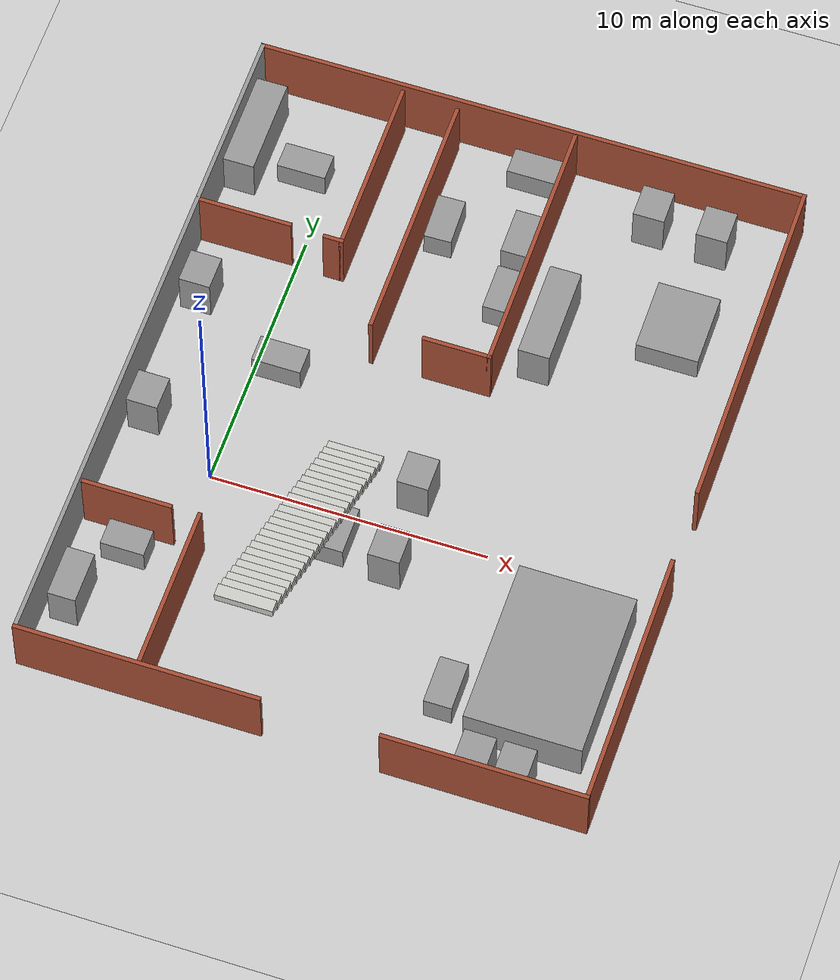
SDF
<sdf version="1.6">
 <world name="default">
  <light name="sun" type="directional">
   <pose>0 0 10 0 -0 0</pose>
   <diffuse>0.8 0.8 0.8 1</diffuse>
   <specular>0.2 0.2 0.2 1</specular>
   <attenuation>
    <range>1000</range>
    <constant>0.9</constant>
    <linear>0.01</linear>
    <quadratic>0.001</quadratic>
   </attenuation>
   <direction>-0.5 0.1 -0.9</direction>
  </light>
  <model name="ground_plane">
   <static>1</static>
   <link name="link">
    <collision name="collision">
     <geometry><plane><normal>0 0 1</normal><size>100 100</size></plane></geometry>
     <surface><friction><ode><mu>100</mu><mu2>50</mu2></ode></friction></surface>
    </collision>
    <visual name="visual">
     <cast_shadows>0</cast_shadows>
     <geometry><plane><normal>0 0 1</normal><size>100 100</size></plane></geometry>
     <material>
      <script><uri>file://media/materials/scripts/gazebo.material</uri><name>Gazebo/Grey</name></script>
     </material>
    </visual>
   </link>
  </model>
  <gravity>0 0 -9.8</gravity>
  <magnetic_field>6e-06 2.3e-05 -4.2e-05</magnetic_field>
  <atmosphere type="adiabatic"/>
  <physics name="default_physics" default="0" type="ode">
   <max_step_size>0.001</max_step_size>
   <real_time_factor>1</real_time_factor>
   <real_time_update_rate>1000</real_time_update_rate>
  </physics>
  <scene><ambient>0.4 0.4 0.4 1</ambient><background>0.7 0.7 0.7 1</background><shadows>1</shadows></scene>
  <spherical_coordinates>
   <surface_model>EARTH_WGS84</surface_model>
   <latitude_deg>0</latitude_deg>
   <longitude_deg>0</longitude_deg>
   <elevation>0</elevation>
   <heading_deg>0</heading_deg>
  </spherical_coordinates>
  <model name="CIMA_LAB">
   <pose>6.35239 3.5423 0 0 -0 0</pose>
   <link name="Stairs_2">
    <visual name="Stairs_2_Visual_0">
     <pose>-1.90803 -1.27666 0.16 0 -0 0</pose>
     <geometry><box><size>2 0.44 0.32</size></box></geometry>
     <material>
      <script><uri>file://media/materials/scripts/gazebo.material</uri><name>Gazebo/CeilingTiled</name></script>
      <ambient>0.760784 0.662745 0.627451 1</ambient>
     </material>
     <meta><layer>0</layer></meta>
    </visual>
    <collision name="Stairs_2_Collision_0">
     <geometry><box><size>2 0.44 0.32</size></box></geometry>
     <pose>-1.90803 -1.27666 0.16 0 -0 0</pose>
    </collision>
    <visual name="Stairs_2_Visual_1">
     <pose>-1.90803 -1.71666 0.48 0 -0 0</pose>
     <geometry><box><size>2 0.44 0.32</size></box></geometry>
     <material>
      <script><uri>file://media/materials/scripts/gazebo.material</uri><name>Gazebo/CeilingTiled</name></script>
      <ambient>0.760784 0.662745 0.627451 1</ambient>
     </material>
     <meta><layer>0</layer></meta>
    </visual>
    <collision name="Stairs_2_Collision_1">
     <geometry><box><size>2 0.44 0.32</size></box></geometry>
     <pose>-1.90803 -1.71666 0.48 0 -0 0</pose>
    </collision>
    <visual name="Stairs_2_Visual_2">
     <pose>-1.90803 -2.15666 0.8 0 -0 0</pose>
     <geometry><box><size>2 0.44 0.32</size></box></geometry>
     <material>
      <script><uri>file://media/materials/scripts/gazebo.material</uri><name>Gazebo/CeilingTiled</name></script>
      <ambient>0.760784 0.662745 0.627451 1</ambient>
     </material>
     <meta><layer>0</layer></meta>
    </visual>
    <collision name="Stairs_2_Collision_2">
     <geometry><box><size>2 0.44 0.32</size></box></geometry>
     <pose>-1.90803 -2.15666 0.8 0 -0 0</pose>
    </collision>
    <visual name="Stairs_2_Visual_3">
     <pose>-1.90803 -2.59666 1.12 0 -0 0</pose>
     <geometry><box><size>2 0.44 0.32</size></box></geometry>
     <material>
      <script><uri>file://media/materials/scripts/gazebo.material</uri><name>Gazebo/CeilingTiled</name></script>
      <ambient>0.760784 0.662745 0.627451 1</ambient>
     </material>
     <meta><layer>0</layer></meta>
    </visual>
    <collision name="Stairs_2_Collision_3">
     <geometry><box><size>2 0.44 0.32</size></box></geometry>
     <pose>-1.90803 -2.59666 1.12 0 -0 0</pose>
    </collision>
    <visual name="Stairs_2_Visual_4">
     <pose>-1.90803 -3.03666 1.44 0 -0 0</pose>
     <geometry><box><size>2 0.44 0.32</size></box></geometry>
     <material>
      <script><uri>file://media/materials/scripts/gazebo.material</uri><name>Gazebo/CeilingTiled</name></script>
      <ambient>0.760784 0.662745 0.627451 1</ambient>
     </material>
     <meta><layer>0</layer></meta>
    </visual>
    <collision name="Stairs_2_Collision_4">
     <geometry><box><size>2 0.44 0.32</size></box></geometry>
     <pose>-1.90803 -3.03666 1.44 0 -0 0</pose>
    </collision>
    <visual name="Stairs_2_Visual_5">
     <pose>-1.90803 -3.47666 1.76 0 -0 0</pose>
     <geometry><box><size>2 0.44 0.32</size></box></geometry>
     <material>
      <script><uri>file://media/materials/scripts/gazebo.material</uri><name>Gazebo/CeilingTiled</name></script>
      <ambient>0.760784 0.662745 0.627451 1</ambient>
     </material>
     <meta><layer>0</layer></meta>
    </visual>
    <collision name="Stairs_2_Collision_5">
     <geometry><box><size>2 0.44 0.32</size></box></geometry>
     <pose>-1.90803 -3.47666 1.76 0 -0 0</pose>
    </collision>
    <visual name="Stairs_2_Visual_6">
     <pose>-1.90803 -3.91666 2.08 0 -0 0</pose>
     <geometry><box><size>2 0.44 0.32</size></box></geometry>
     <material>
      <script><uri>file://media/materials/scripts/gazebo.material</uri><name>Gazebo/CeilingTiled</name></script>
      <ambient>0.760784 0.662745 0.627451 1</ambient>
     </material>
     <meta><layer>0</layer></meta>
    </visual>
    <collision name="Stairs_2_Collision_6">
     <geometry><box><size>2 0.44 0.32</size></box></geometry>
     <pose>-1.90803 -3.91666 2.08 0 -0 0</pose>
    </collision>
    <visual name="Stairs_2_Visual_7">
     <pose>-1.90803 -4.35666 2.4 0 -0 0</pose>
     <geometry><box><size>2 0.44 0.32</size></box></geometry>
     <material>
      <script><uri>file://media/materials/scripts/gazebo.material</uri><name>Gazebo/CeilingTiled</name></script>
      <ambient>0.760784 0.662745 0.627451 1</ambient>
     </material>
     <meta><layer>0</layer></meta>
    </visual>
    <collision name="Stairs_2_Collision_7">
     <geometry><box><size>2 0.44 0.32</size></box></geometry>
     <pose>-1.90803 -4.35666 2.4 0 -0 0</pose>
    </collision>
    <visual name="Stairs_2_Visual_8">
     <pose>-1.90803 -4.79666 2.72 0 -0 0</pose>
     <geometry><box><size>2 0.44 0.32</size></box></geometry>
     <material>
      <script><uri>file://media/materials/scripts/gazebo.material</uri><name>Gazebo/CeilingTiled</name></script>
      <ambient>0.760784 0.662745 0.627451 1</ambient>
     </material>
     <meta><layer>0</layer></meta>
    </visual>
    <collision name="Stairs_2_Collision_8">
     <geometry><box><size>2 0.44 0.32</size></box></geometry>
     <pose>-1.90803 -4.79666 2.72 0 -0 0</pose>
    </collision>
    <visual name="Stairs_2_Visual_9">
     <pose>-1.90803 -5.23666 3.04 0 -0 0</pose>
     <geometry><box><size>2 0.44 0.32</size></box></geometry>
     <material>
      <script><uri>file://media/materials/scripts/gazebo.material</uri><name>Gazebo/CeilingTiled</name></script>
      <ambient>0.760784 0.662745 0.627451 1</ambient>
     </material>
     <meta><layer>0</layer></meta>
    </visual>
    <collision name="Stairs_2_Collision_9">
     <geometry><box><size>2 0.44 0.32</size></box></geometry>
     <pose>-1.90803 -5.23666 3.04 0 -0 0</pose>
    </collision>
    <visual name="Stairs_2_Visual_10">
     <pose>-1.90803 -5.67666 3.36 0 -0 0</pose>
     <geometry><box><size>2 0.44 0.32</size></box></geometry>
     <material>
      <script><uri>file://media/materials/scripts/gazebo.material</uri><name>Gazebo/CeilingTiled</name></script>
      <ambient>0.760784 0.662745 0.627451 1</ambient>
     </material>
     <meta><layer>0</layer></meta>
    </visual>
    <collision name="Stairs_2_Collision_10">
     <geometry><box><size>2 0.44 0.32</size></box></geometry>
     <pose>-1.90803 -5.67666 3.36 0 -0 0</pose>
    </collision>
    <visual name="Stairs_2_Visual_11">
     <pose>-1.90803 -6.11666 3.68 0 -0 0</pose>
     <geometry><box><size>2 0.44 0.32</size></box></geometry>
     <material>
      <script><uri>file://media/materials/scripts/gazebo.material</uri><name>Gazebo/CeilingTiled</name></script>
      <ambient>0.760784 0.662745 0.627451 1</ambient>
     </material>
     <meta><layer>0</layer></meta>
    </visual>
    <collision name="Stairs_2_Collision_11">
     <geometry><box><size>2 0.44 0.32</size></box></geometry>
     <pose>-1.90803 -6.11666 3.68 0 -0 0</pose>
    </collision>
    <visual name="Stairs_2_Visual_12">
     <pose>-1.90803 -6.55666 4 0 -0 0</pose>
     <geometry><box><size>2 0.44 0.32</size></box></geometry>
     <material>
      <script><uri>file://media/materials/scripts/gazebo.material</uri><name>Gazebo/CeilingTiled</name></script>
      <ambient>0.760784 0.662745 0.627451 1</ambient>
     </material>
     <meta><layer>0</layer></meta>
    </visual>
    <collision name="Stairs_2_Collision_12">
     <geometry><box><size>2 0.44 0.32</size></box></geometry>
     <pose>-1.90803 -6.55666 4 0 -0 0</pose>
    </collision>
    <visual name="Stairs_2_Visual_13">
     <pose>-1.90803 -6.99666 4.32 0 -0 0</pose>
     <geometry><box><size>2 0.44 0.32</size></box></geometry>
     <material>
      <script><uri>file://media/materials/scripts/gazebo.material</uri><name>Gazebo/CeilingTiled</name></script>
      <ambient>0.760784 0.662745 0.627451 1</ambient>
     </material>
     <meta><layer>0</layer></meta>
    </visual>
    <collision name="Stairs_2_Collision_13">
     <geometry><box><size>2 0.44 0.32</size></box></geometry>
     <pose>-1.90803 -6.99666 4.32 0 -0 0</pose>
    </collision>
    <visual name="Stairs_2_Visual_14">
     <pose>-1.90803 -7.43666 4.64 0 -0 0</pose>
     <geometry><box><size>2 0.44 0.32</size></box></geometry>
     <material>
      <script><uri>file://media/materials/scripts/gazebo.material</uri><name>Gazebo/CeilingTiled</name></script>
      <ambient>0.760784 0.662745 0.627451 1</ambient>
     </material>
     <meta><layer>0</layer></meta>
    </visual>
    <collision name="Stairs_2_Collision_14">
     <geometry><box><size>2 0.44 0.32</size></box></geometry>
     <pose>-1.90803 -7.43666 4.64 0 -0 0</pose>
    </collision>
    <visual name="Stairs_2_Visual_15">
     <pose>-1.90803 -7.87666 4.96 0 -0 0</pose>
     <geometry><box><size>2 0.44 0.32</size></box></geometry>
     <material>
      <script><uri>file://media/materials/scripts/gazebo.material</uri><name>Gazebo/CeilingTiled</name></script>
      <ambient>0.760784 0.662745 0.627451 1</ambient>
     </material>
     <meta><layer>0</layer></meta>
    </visual>
    <collision name="Stairs_2_Collision_15">
     <geometry><box><size>2 0.44 0.32</size></box></geometry>
     <pose>-1.90803 -7.87666 4.96 0 -0 0</pose>
    </collision>
    <visual name="Stairs_2_Visual_16">
     <pose>-1.90803 -8.31666 5.28 0 -0 0</pose>
     <geometry><box><size>2 0.44 0.32</size></box></geometry>
     <material>
      <script><uri>file://media/materials/scripts/gazebo.material</uri><name>Gazebo/CeilingTiled</name></script>
      <ambient>0.760784 0.662745 0.627451 1</ambient>
     </material>
     <meta><layer>0</layer></meta>
    </visual>
    <collision name="Stairs_2_Collision_16">
     <geometry><box><size>2 0.44 0.32</size></box></geometry>
     <pose>-1.90803 -8.31666 5.28 0 -0 0</pose>
    </collision>
    <visual name="Stairs_2_Visual_17">
     <pose>-1.90803 -8.75666 5.6 0 -0 0</pose>
     <geometry><box><size>2 0.44 0.32</size></box></geometry>
     <material>
      <script><uri>file://media/materials/scripts/gazebo.material</uri><name>Gazebo/CeilingTiled</name></script>
      <ambient>0.760784 0.662745 0.627451 1</ambient>
     </material>
     <meta><layer>0</layer></meta>
    </visual>
    <collision name="Stairs_2_Collision_17">
     <geometry><box><size>2 0.44 0.32</size></box></geometry>
     <pose>-1.90803 -8.75666 5.6 0 -0 0</pose>
    </collision>
    <visual name="Stairs_2_Visual_18">
     <pose>-1.90803 -9.19666 5.92 0 -0 0</pose>
     <geometry><box><size>2 0.44 0.32</size></box></geometry>
     <material>
      <script><uri>file://media/materials/scripts/gazebo.material</uri><name>Gazebo/CeilingTiled</name></script>
      <ambient>0.760784 0.662745 0.627451 1</ambient>
     </material>
     <meta><layer>0</layer></meta>
    </visual>
    <collision name="Stairs_2_Collision_18">
     <geometry><box><size>2 0.44 0.32</size></box></geometry>
     <pose>-1.90803 -9.19666 5.92 0 -0 0</pose>
    </collision>
    <visual name="Stairs_2_Visual_19">
     <pose>-1.90803 -9.63666 6.24 0 -0 0</pose>
     <geometry><box><size>2 0.44 0.32</size></box></geometry>
     <material>
      <script><uri>file://media/materials/scripts/gazebo.material</uri><name>Gazebo/CeilingTiled</name></script>
      <ambient>0.760784 0.662745 0.627451 1</ambient>
     </material>
     <meta><layer>0</layer></meta>
    </visual>
    <collision name="Stairs_2_Collision_19">
     <geometry><box><size>2 0.44 0.32</size></box></geometry>
     <pose>-1.90803 -9.63666 6.24 0 -0 0</pose>
    </collision>
    <visual name="Stairs_2_Visual_20">
     <pose>-1.90803 -10.0767 6.56 0 -0 0</pose>
     <geometry><box><size>2 0.44 0.32</size></box></geometry>
     <material>
      <script><uri>file://media/materials/scripts/gazebo.material</uri><name>Gazebo/CeilingTiled</name></script>
      <ambient>0.760784 0.662745 0.627451 1</ambient>
     </material>
     <meta><layer>0</layer></meta>
    </visual>
    <collision name="Stairs_2_Collision_20">
     <geometry><box><size>2 0.44 0.32</size></box></geometry>
     <pose>-1.90803 -10.0767 6.56 0 -0 0</pose>
    </collision>
    <visual name="Stairs_2_Visual_21">
     <pose>-1.90803 -10.5167 6.88 0 -0 0</pose>
     <geometry><box><size>2 0.44 0.32</size></box></geometry>
     <material>
      <script><uri>file://media/materials/scripts/gazebo.material</uri><name>Gazebo/CeilingTiled</name></script>
      <ambient>0.760784 0.662745 0.627451 1</ambient>
     </material>
     <meta><layer>0</layer></meta>
    </visual>
    <collision name="Stairs_2_Collision_21">
     <geometry><box><size>2 0.44 0.32</size></box></geometry>
     <pose>-1.90803 -10.5167 6.88 0 -0 0</pose>
    </collision>
    <visual name="Stairs_2_Visual_22">
     <pose>-1.90803 -10.9567 7.2 0 -0 0</pose>
     <geometry><box><size>2 0.44 0.32</size></box></geometry>
     <material>
      <script><uri>file://media/materials/scripts/gazebo.material</uri><name>Gazebo/CeilingTiled</name></script>
      <ambient>0.760784 0.662745 0.627451 1</ambient>
     </material>
     <meta><layer>0</layer></meta>
    </visual>
    <collision name="Stairs_2_Collision_22">
     <geometry><box><size>2 0.44 0.32</size></box></geometry>
     <pose>-1.90803 -10.9567 7.2 0 -0 0</pose>
    </collision>
    <visual name="Stairs_2_Visual_23">
     <pose>-1.90803 -11.3967 7.52 0 -0 0</pose>
     <geometry><box><size>2 0.44 0.32</size></box></geometry>
     <material>
      <script><uri>file://media/materials/scripts/gazebo.material</uri><name>Gazebo/CeilingTiled</name></script>
      <ambient>0.760784 0.662745 0.627451 1</ambient>
     </material>
     <meta><layer>0</layer></meta>
    </visual>
    <collision name="Stairs_2_Collision_23">
     <geometry><box><size>2 0.44 0.32</size></box></geometry>
     <pose>-1.90803 -11.3967 7.52 0 -0 0</pose>
    </collision>
    <visual name="Stairs_2_Visual_24">
     <pose>-1.90803 -11.8367 7.84 0 -0 0</pose>
     <geometry><box><size>2 0.44 0.32</size></box></geometry>
     <material>
      <script><uri>file://media/materials/scripts/gazebo.material</uri><name>Gazebo/CeilingTiled</name></script>
      <ambient>0.760784 0.662745 0.627451 1</ambient>
     </material>
     <meta><layer>0</layer></meta>
    </visual>
    <collision name="Stairs_2_Collision_24">
     <geometry><box><size>2 0.44 0.32</size></box></geometry>
     <pose>-1.90803 -11.8367 7.84 0 -0 0</pose>
    </collision>
   </link>
   <link name="Wall_0">
    <collision name="Wall_0_Collision">
     <geometry><box><size>25 0.15 2.5</size></box></geometry>
     <pose>0 0 1.25 0 -0 0</pose>
    </collision>
    <visual name="Wall_0_Visual">
     <pose>0 0 1.25 0 -0 0</pose>
     <geometry><box><size>25 0.15 2.5</size></box></geometry>
     <material>
      <script><uri>file://media/materials/scripts/gazebo.material</uri><name>Gazebo/Grey</name></script>
      <ambient>1 1 1 1</ambient>
     </material>
     <meta><layer>0</layer></meta>
    </visual>
    <pose>-10 0.009925 0 0 -0 -1.5708</pose>
   </link>
   <link name="Wall_15">
    <collision name="Wall_15_Collision">
     <geometry><box><size>0.75 0.15 2.5</size></box></geometry>
     <pose>0 0 1.25 0 -0 0</pose>
    </collision>
    <visual name="Wall_15_Visual">
     <pose>0 0 1.25 0 -0 0</pose>
     <geometry><box><size>0.75 0.15 2.5</size></box></geometry>
     <material>
      <script><uri>file://media/materials/scripts/gazebo.material</uri><name>Gazebo/Bricks</name></script>
      <ambient>1 1 1 1</ambient>
     </material>
     <meta><layer>0</layer></meta>
    </visual>
    <pose>-4.97494 5.50618 0 0 -0 0</pose>
   </link>
   <link name="Wall_16">
    <collision name="Wall_16_Collision">
     <geometry><box><size>6.75 0.15 2.5</size></box></geometry>
     <pose>0 0 1.25 0 -0 0</pose>
    </collision>
    <visual name="Wall_16_Visual">
     <pose>0 0 1.25 0 -0 0</pose>
     <geometry><box><size>6.75 0.15 2.5</size></box></geometry>
     <material>
      <script><uri>file://media/materials/scripts/gazebo.material</uri><name>Gazebo/Bricks</name></script>
      <ambient>1 1 1 1</ambient>
     </material>
     <meta><layer>0</layer></meta>
    </visual>
    <pose>-4.67494 8.80618 0 0 -0 1.5708</pose>
   </link>
   <link name="Wall_18">
    <collision name="Wall_18_Collision">
     <geometry><box><size>3.5 0.15 2.5</size></box></geometry>
     <pose>0 0 1.25 0 -0 0</pose>
    </collision>
    <visual name="Wall_18_Visual">
     <pose>0 0 1.25 0 -0 0</pose>
     <geometry><box><size>3.5 0.15 2.5</size></box></geometry>
     <material>
      <script><uri>file://media/materials/scripts/gazebo.material</uri><name>Gazebo/Bricks</name></script>
      <ambient>1 1 1 1</ambient>
     </material>
     <meta><layer>0</layer></meta>
    </visual>
    <pose>-8.28251 5.57631 0 0 -0 3.14159</pose>
   </link>
   <link name="Wall_2">
    <collision name="Wall_2_Collision">
     <geometry><box><size>12.75 0.15 2.5</size></box></geometry>
     <pose>0 0 1.25 0 -0 0</pose>
    </collision>
    <visual name="Wall_2_Visual">
     <pose>0 0 1.25 0 -0 0</pose>
     <geometry><box><size>12.75 0.15 2.5</size></box></geometry>
     <material>
      <script><uri>file://media/materials/scripts/gazebo.material</uri><name>Gazebo/Bricks</name></script>
      <ambient>1 1 1 1</ambient>
     </material>
     <meta><layer>0</layer></meta>
    </visual>
    <pose>10 6.09492 0 0 -0 1.5708</pose>
   </link>
   <link name="Wall_20">
    <collision name="Wall_20_Collision">
     <geometry><box><size>9.75 0.15 2.5</size></box></geometry>
     <pose>0 0 1.25 0 -0 0</pose>
    </collision>
    <visual name="Wall_20_Visual">
     <pose>0 0 1.25 0 -0 0</pose>
     <geometry><box><size>9.75 0.15 2.5</size></box></geometry>
     <material>
      <script><uri>file://media/materials/scripts/gazebo.material</uri><name>Gazebo/Bricks</name></script>
      <ambient>1 1 1 1</ambient>
     </material>
     <meta><layer>0</layer></meta>
    </visual>
    <pose>1.66843 7.43914 0 0 -0 -1.5708</pose>
   </link>
   <link name="Wall_21">
    <collision name="Wall_21_Collision">
     <geometry><box><size>2.5 0.15 2.5</size></box></geometry>
     <pose>0 0 1.25 0 -0 0</pose>
    </collision>
    <visual name="Wall_21_Visual">
     <pose>0 0 1.25 0 -0 0</pose>
     <geometry><box><size>2.5 0.15 2.5</size></box></geometry>
     <material>
      <script><uri>file://media/materials/scripts/gazebo.material</uri><name>Gazebo/Bricks</name></script>
      <ambient>1 1 1 1</ambient>
     </material>
     <meta><layer>0</layer></meta>
    </visual>
    <pose>0.493428 2.63914 0 0 -0 3.14159</pose>
   </link>
   <link name="Wall_23">
    <collision name="Wall_23_Collision">
     <geometry><box><size>9.5 0.15 2.5</size></box></geometry>
     <pose>0 0 1.25 0 -0 0</pose>
    </collision>
    <visual name="Wall_23_Visual">
     <pose>0 0 1.25 0 -0 0</pose>
     <geometry><box><size>9.5 0.15 2.5</size></box></geometry>
     <material>
      <script><uri>file://media/materials/scripts/gazebo.material</uri><name>Gazebo/Bricks</name></script>
      <ambient>1 1 1 1</ambient>
     </material>
     <meta><layer>0</layer></meta>
    </visual>
    <pose>-2.60981 7.30564 0 0 -0 1.5708</pose>
   </link>
   <link name="Wall_25">
    <collision name="Wall_25_Collision">
     <geometry><box><size>3.25 0.15 2.5</size></box></geometry>
     <pose>0 0 1.25 0 -0 0</pose>
    </collision>
    <visual name="Wall_25_Visual">
     <pose>0 0 1.25 0 -0 0</pose>
     <geometry><box><size>3.25 0.15 2.5</size></box></geometry>
     <material>
      <script><uri>file://media/materials/scripts/gazebo.material</uri><name>Gazebo/Bricks</name></script>
      <ambient>1 1 1 1</ambient>
     </material>
     <meta><layer>0</layer></meta>
    </visual>
    <pose>-8.22765 -6.41678 0 0 -0 3.14159</pose>
   </link>
   <link name="Wall_27">
    <collision name="Wall_27_Collision">
     <geometry><box><size>6 0.15 2.5</size></box></geometry>
     <pose>0 0 1.25 0 -0 0</pose>
    </collision>
    <visual name="Wall_27_Visual">
     <pose>0 0 1.25 0 -0 0</pose>
     <geometry><box><size>6 0.15 2.5</size></box></geometry>
     <material>
      <script><uri>file://media/materials/scripts/gazebo.material</uri><name>Gazebo/Bricks</name></script>
      <ambient>1 1 1 1</ambient>
     </material>
     <meta><layer>0</layer></meta>
    </visual>
    <pose>-5.62562 -9.34178 0 0 -0 -1.5708</pose>
   </link>
   <link name="Wall_3">
    <collision name="Wall_3_Collision">
     <geometry><box><size>20.15 0.15 2.5</size></box></geometry>
     <pose>0 0 1.25 0 -0 0</pose>
    </collision>
    <visual name="Wall_3_Visual">
     <pose>0 0 1.25 0 -0 0</pose>
     <geometry><box><size>20.15 0.15 2.5</size></box></geometry>
     <material>
      <script><uri>file://media/materials/scripts/gazebo.material</uri><name>Gazebo/Bricks</name></script>
      <ambient>1 1 1 1</ambient>
     </material>
     <meta><layer>0</layer></meta>
    </visual>
    <pose>0 12.4149 0 0 -0 3.13959</pose>
   </link>
   <link name="Wall_4">
    <collision name="Wall_4_Collision">
     <geometry><box><size>25 0.15 2.5</size></box></geometry>
     <pose>0 0 1.25 0 -0 0</pose>
    </collision>
    <visual name="Wall_4_Visual">
     <pose>0 0 1.25 0 -0 0</pose>
     <geometry><box><size>25 0.15 2.5</size></box></geometry>
     <material>
      <script><uri>file://media/materials/scripts/gazebo.material</uri><name>Gazebo/Bricks</name></script>
      <ambient>1 1 1 1</ambient>
     </material>
     <meta><layer>0</layer></meta>
    </visual>
    <pose>-10 0.009925 0 0 -0 -1.5708</pose>
   </link>
   <link name="Wall_5">
    <collision name="Wall_5_Collision">
     <geometry><box><size>8.75 0.15 2.5</size></box></geometry>
     <pose>0 0 1.25 0 -0 0</pose>
    </collision>
    <visual name="Wall_5_Visual">
     <pose>0 0 1.25 0 -0 0</pose>
     <geometry><box><size>8.75 0.15 2.5</size></box></geometry>
     <material>
      <script><uri>file://media/materials/scripts/gazebo.material</uri><name>Gazebo/Bricks</name></script>
      <ambient>1 1 1 1</ambient>
     </material>
     <meta><layer>0</layer></meta>
    </visual>
    <pose>-5.7 -12.4151 0 0 -0 0</pose>
   </link>
   <link name="Wall_7">
    <collision name="Wall_7_Collision">
     <geometry><box><size>9.5 0.15 2.5</size></box></geometry>
     <pose>0 0 1.25 0 -0 0</pose>
    </collision>
    <visual name="Wall_7_Visual">
     <pose>0 0 1.25 0 -0 0</pose>
     <geometry><box><size>9.5 0.15 2.5</size></box></geometry>
     <material>
      <script><uri>file://media/materials/scripts/gazebo.material</uri><name>Gazebo/Bricks</name></script>
      <ambient>1 1 1 1</ambient>
     </material>
     <meta><layer>0</layer></meta>
    </visual>
    <pose>10 -7.76007 0 0 -0 -1.5708</pose>
   </link>
   <link name="Wall_8">
    <collision name="Wall_8_Collision">
     <geometry><box><size>7.25 0.15 2.5</size></box></geometry>
     <pose>0 0 1.25 0 -0 0</pose>
    </collision>
    <visual name="Wall_8_Visual">
     <pose>0 0 1.25 0 -0 0</pose>
     <geometry><box><size>7.25 0.15 2.5</size></box></geometry>
     <material>
      <script><uri>file://media/materials/scripts/gazebo.material</uri><name>Gazebo/Bricks</name></script>
      <ambient>1 1 1 1</ambient>
     </material>
     <meta><layer>0</layer></meta>
    </visual>
    <pose>6.45 -12.4351 0 0 -0 3.14159</pose>
   </link>
   <static>1</static>
  </model>
  <model name="unit_box">
   <pose>7.02293 1.50267 0.892851 -6e-06 1e-06 -0.000806</pose>
   <link name="link">
    <inertial>
     <mass>1</mass>
     <inertia>
      <ixx>0.166667</ixx>
      <ixy>0</ixy>
      <ixz>0</ixz>
      <iyy>0.166667</iyy>
      <iyz>0</iyz>
      <izz>0.166667</izz>
     </inertia>
    </inertial>
    <collision name="collision"><geometry><box><size>1.13282 1.25934 1.78571</size></box></geometry></collision>
    <visual name="visual">
     <geometry><box><size>1.13282 1.25934 1.78571</size></box></geometry>
     <material>
      <script><name>Gazebo/Grey</name><uri>file://media/materials/scripts/gazebo.material</uri></script>
     </material>
    </visual>
   </link>
  </model>
  <model name="unit_box_clone">
   <pose>7.01544 -1.51095 0.892851 -6e-06 1e-06 -0.000678</pose>
   <link name="link">
    <inertial>
     <mass>1</mass>
     <inertia>
      <ixx>0.166667</ixx>
      <ixy>0</ixy>
      <ixz>0</ixz>
      <iyy>0.166667</iyy>
      <iyz>0</iyz>
      <izz>0.166667</izz>
     </inertia>
    </inertial>
    <collision name="collision"><geometry><box><size>1.13282 1.25934 1.78571</size></box></geometry></collision>
    <visual name="visual">
     <geometry><box><size>1.13282 1.25934 1.78571</size></box></geometry>
     <material>
      <script><name>Gazebo/Grey</name><uri>file://media/materials/scripts/gazebo.material</uri></script>
     </material>
    </visual>
   </link>
  </model>
  <model name="unit_box_clone_0">
   <pose>11.3683 14.4254 0.892855 0 0 -0.000681</pose>
   <link name="link">
    <inertial>
     <mass>1</mass>
     <inertia>
      <ixx>0.166667</ixx>
      <ixy>0</ixy>
      <ixz>0</ixz>
      <iyy>0.166667</iyy>
      <iyz>0</iyz>
      <izz>0.166667</izz>
     </inertia>
    </inertial>
    <collision name="collision"><geometry><box><size>1.13282 1.25934 1.78571</size></box></geometry></collision>
    <visual name="visual">
     <geometry><box><size>1.13282 1.25934 1.78571</size></box></geometry>
     <material>
      <script><name>Gazebo/Grey</name><uri>file://media/materials/scripts/gazebo.material</uri></script>
     </material>
    </visual>
   </link>
  </model>
  <model name="unit_box_clone_1">
   <pose>13.7069 14.3046 0.892851 6e-06 -1e-06 -0.000419</pose>
   <link name="link">
    <inertial>
     <mass>1</mass>
     <inertia>
      <ixx>0.166667</ixx>
      <ixy>0</ixy>
      <ixz>0</ixz>
      <iyy>0.166667</iyy>
      <iyz>0</iyz>
      <izz>0.166667</izz>
     </inertia>
    </inertial>
    <collision name="collision"><geometry><box><size>1.13282 1.25934 1.78571</size></box></geometry></collision>
    <visual name="visual">
     <geometry><box><size>1.13282 1.25934 1.78571</size></box></geometry>
     <material>
      <script><name>Gazebo/Grey</name><uri>file://media/materials/scripts/gazebo.material</uri></script>
     </material>
    </visual>
   </link>
  </model>
  <model name="unit_box_clone_2">
   <pose>9.30082 8.99313 0.892637 0.00012 -0 -8.6e-05</pose>
   <link name="link">
    <inertial>
     <mass>1</mass>
     <inertia>
      <ixx>0.166667</ixx>
      <ixy>0</ixy>
      <ixz>0</ixz>
      <iyy>0.166667</iyy>
      <iyz>0</iyz>
      <izz>0.166667</izz>
     </inertia>
    </inertial>
    <collision name="collision"><geometry><box><size>1.13282 3.62062 1.78571</size></box></geometry></collision>
    <visual name="visual">
     <geometry><box><size>1.13282 3.62062 1.78571</size></box></geometry>
     <material>
      <script><name>Gazebo/Grey</name><uri>file://media/materials/scripts/gazebo.material</uri></script>
     </material>
    </visual>
   </link>
  </model>
  <model name="unit_box_0">
   <pose>13.4846 -3.87153 0.813121 0.001267 -0 0</pose>
   <link name="link">
    <inertial>
     <mass>1</mass>
     <inertia>
      <ixx>0.166667</ixx>
      <ixy>0</ixy>
      <ixz>0</ixz>
      <iyy>0.166667</iyy>
      <iyz>0</iyz>
      <izz>0.166667</izz>
     </inertia>
    </inertial>
    <collision name="collision"><geometry><box><size>4.14822 6.05781 1.63391</size></box></geometry></collision>
    <visual name="visual">
     <geometry><box><size>4.14822 6.05781 1.63391</size></box></geometry>
     <material>
      <script><name>Gazebo/Grey</name><uri>file://media/materials/scripts/gazebo.material</uri></script>
     </material>
    </visual>
   </link>
  </model>
  <model name="unit_box_clone_3">
   <pose>13.6061 -8.05073 0.892855 0 0 -0.002632</pose>
   <link name="link">
    <inertial>
     <mass>1</mass>
     <inertia>
      <ixx>0.166667</ixx>
      <ixy>0</ixy>
      <ixz>0</ixz>
      <iyy>0.166667</iyy>
      <iyz>0</iyz>
      <izz>0.166667</izz>
     </inertia>
    </inertial>
    <collision name="collision"><geometry><box><size>1.13282 1.25934 1.78571</size></box></geometry></collision>
    <visual name="visual">
     <geometry><box><size>1.13282 1.25934 1.78571</size></box></geometry>
     <material>
      <script><name>Gazebo/Grey</name><uri>file://media/materials/scripts/gazebo.material</uri></script>
     </material>
    </visual>
   </link>
  </model>
  <model name="unit_box_clone_4">
   <pose>12.204 -8.05221 0.892851 -6e-06 -1e-06 -0.002895</pose>
   <link name="link">
    <inertial>
     <mass>1</mass>
     <inertia>
      <ixx>0.166667</ixx>
      <ixy>0</ixy>
      <ixz>0</ixz>
      <iyy>0.166667</iyy>
      <iyz>0</iyz>
      <izz>0.166667</izz>
     </inertia>
    </inertial>
    <collision name="collision"><geometry><box><size>1.13282 1.25934 1.78571</size></box></geometry></collision>
    <visual name="visual">
     <geometry><box><size>1.13282 1.25934 1.78571</size></box></geometry>
     <material>
      <script><name>Gazebo/Grey</name><uri>file://media/materials/scripts/gazebo.material</uri></script>
     </material>
    </visual>
   </link>
  </model>
  <model name="unit_box_1">
   <pose>10.3754 -5.56287 0.5 0 -0 0</pose>
   <link name="link">
    <inertial>
     <mass>1</mass>
     <inertia>
      <ixx>0.166667</ixx>
      <ixy>0</ixy>
      <ixz>0</ixz>
      <iyy>0.166667</iyy>
      <iyz>0</iyz>
      <izz>0.166667</izz>
     </inertia>
    </inertial>
    <collision name="collision"><geometry><box><size>1 1.78009 1</size></box></geometry></collision>
    <visual name="visual">
     <geometry><box><size>1 1.78009 1</size></box></geometry>
     <material>
      <script><name>Gazebo/Grey</name><uri>file://media/materials/scripts/gazebo.material</uri></script>
     </material>
    </visual>
   </link>
  </model>
  <model name="unit_box_2">
   <pose>-1.64952 -3.6799 0.499995 1e-05 -0 0</pose>
   <link name="link">
    <inertial>
     <mass>1</mass>
     <inertia>
      <ixx>0.166667</ixx>
      <ixy>0</ixy>
      <ixz>0</ixz>
      <iyy>0.166667</iyy>
      <iyz>0</iyz>
      <izz>0.166667</izz>
     </inertia>
    </inertial>
    <collision name="collision"><geometry><box><size>1.57049 1 1</size></box></geometry></collision>
    <visual name="visual">
     <geometry><box><size>1.57049 1 1</size></box></geometry>
     <material>
      <script><name>Gazebo/Grey</name><uri>file://media/materials/scripts/gazebo.material</uri></script>
     </material>
    </visual>
   </link>
  </model>
  <model name="unit_box_3">
   <pose>-2.76851 -5.99137 0.852081 0 -0 0</pose>
   <link name="link">
    <inertial>
     <mass>1</mass>
     <inertia>
      <ixx>0.166667</ixx>
      <ixy>0</ixy>
      <ixz>0</ixz>
      <iyy>0.166667</iyy>
      <iyz>0</iyz>
      <izz>0.166667</izz>
     </inertia>
    </inertial>
    <collision name="collision"><geometry><box><size>1 1.89667 1.70416</size></box></geometry></collision>
    <visual name="visual">
     <geometry><box><size>1 1.89667 1.70416</size></box></geometry>
     <material>
      <script><name>Gazebo/Grey</name><uri>file://media/materials/scripts/gazebo.material</uri></script>
     </material>
    </visual>
   </link>
  </model>
  <model name="unit_box_1_clone">
   <pose>0.875036 4.85657 0.5 0 -0 1.56925</pose>
   <link name="link">
    <inertial>
     <mass>1</mass>
     <inertia>
      <ixx>0.166667</ixx>
      <ixy>0</ixy>
      <ixz>0</ixz>
      <iyy>0.166667</iyy>
      <iyz>0</iyz>
      <izz>0.166667</izz>
     </inertia>
    </inertial>
    <collision name="collision"><geometry><box><size>1 1.78009 1</size></box></geometry></collision>
    <visual name="visual">
     <geometry><box><size>1 1.78009 1</size></box></geometry>
     <material>
      <script><name>Gazebo/Grey</name><uri>file://media/materials/scripts/gazebo.material</uri></script>
     </material>
    </visual>
   </link>
  </model>
  <model name="unit_box_clone_5">
   <pose>-2.74808 6.82454 0.892855 0 0 -0.005624</pose>
   <link name="link">
    <inertial>
     <mass>1</mass>
     <inertia>
      <ixx>0.166667</ixx>
      <ixy>0</ixy>
      <ixz>0</ixz>
      <iyy>0.166667</iyy>
      <iyz>0</iyz>
      <izz>0.166667</izz>
     </inertia>
    </inertial>
    <collision name="collision"><geometry><box><size>1.13282 1.25934 1.78571</size></box></geometry></collision>
    <visual name="visual">
     <geometry><box><size>1.13282 1.25934 1.78571</size></box></geometry>
     <material>
      <script><name>Gazebo/Grey</name><uri>file://media/materials/scripts/gazebo.material</uri></script>
     </material>
    </visual>
   </link>
  </model>
  <model name="unit_box_clone_6">
   <pose>-2.79251 1.64 0.892851 -6e-06 -1e-06 -0.005496</pose>
   <link name="link">
    <inertial>
     <mass>1</mass>
     <inertia>
      <ixx>0.166667</ixx>
      <ixy>0</ixy>
      <ixz>0</ixz>
      <iyy>0.166667</iyy>
      <iyz>0</iyz>
      <izz>0.166667</izz>
     </inertia>
    </inertial>
    <collision name="collision"><geometry><box><size>1.13282 1.25934 1.78571</size></box></geometry></collision>
    <visual name="visual">
     <geometry><box><size>1.13282 1.25934 1.78571</size></box></geometry>
     <material>
      <script><name>Gazebo/Grey</name><uri>file://media/materials/scripts/gazebo.material</uri></script>
     </material>
    </visual>
   </link>
  </model>
  <model name="unit_box_1_clone_clone">
   <pose>-0.952126 12.7457 0.499995 6e-06 -0 1.56927</pose>
   <link name="link">
    <inertial>
     <mass>1</mass>
     <inertia>
      <ixx>0.166667</ixx>
      <ixy>0</ixy>
      <ixz>0</ixz>
      <iyy>0.166667</iyy>
      <iyz>0</iyz>
      <izz>0.166667</izz>
     </inertia>
    </inertial>
    <collision name="collision"><geometry><box><size>1 1.78009 1</size></box></geometry></collision>
    <visual name="visual">
     <geometry><box><size>1 1.78009 1</size></box></geometry>
     <material>
      <script><name>Gazebo/Grey</name><uri>file://media/materials/scripts/gazebo.material</uri></script>
     </material>
    </visual>
   </link>
  </model>
  <model name="unit_box_clone_2_clone">
   <pose>-2.98045 13.2214 0.892637 -0.00012 -0 3.3e-05</pose>
   <link name="link">
    <inertial>
     <mass>1</mass>
     <inertia>
      <ixx>0.166667</ixx>
      <ixy>0</ixy>
      <ixz>0</ixz>
      <iyy>0.166667</iyy>
      <iyz>0</iyz>
      <izz>0.166667</izz>
     </inertia>
    </inertial>
    <collision name="collision"><geometry><box><size>1.13282 3.62061 1.78571</size></box></geometry></collision>
    <visual name="visual">
     <geometry><box><size>1.13282 3.62061 1.78571</size></box></geometry>
     <material>
      <script><name>Gazebo/Grey</name><uri>file://media/materials/scripts/gazebo.material</uri></script>
     </material>
    </visual>
   </link>
  </model>
  <model name="unit_box_1_clone_clone_0">
   <pose>6.80551 15.0987 0.499995 6e-06 -0 1.56927</pose>
   <link name="link">
    <inertial>
     <mass>1</mass>
     <inertia>
      <ixx>0.166667</ixx>
      <ixy>0</ixy>
      <ixz>0</ixz>
      <iyy>0.166667</iyy>
      <iyz>0</iyz>
      <izz>0.166667</izz>
     </inertia>
    </inertial>
    <collision name="collision"><geometry><box><size>1 1.78009 1</size></box></geometry></collision>
    <visual name="visual">
     <geometry><box><size>1 1.78009 1</size></box></geometry>
     <material>
      <script><name>Gazebo/Grey</name><uri>file://media/materials/scripts/gazebo.material</uri></script>
     </material>
    </visual>
   </link>
  </model>
  <model name="unit_box_1_clone_clone_1">
   <pose>4.47587 11.9874 0.499995 0 9e-06 -3.11299</pose>
   <link name="link">
    <inertial>
     <mass>1</mass>
     <inertia>
      <ixx>0.166667</ixx>
      <ixy>0</ixy>
      <ixz>0</ixz>
      <iyy>0.166667</iyy>
      <iyz>0</iyz>
      <izz>0.166667</izz>
     </inertia>
    </inertial>
    <collision name="collision"><geometry><box><size>1 1.78009 1</size></box></geometry></collision>
    <visual name="visual">
     <geometry><box><size>1 1.78009 1</size></box></geometry>
     <material>
      <script><name>Gazebo/Grey</name><uri>file://media/materials/scripts/gazebo.material</uri></script>
     </material>
    </visual>
   </link>
  </model>
  <model name="unit_box_1_clone_clone_2">
   <pose>7.36614 9.84407 0.499995 0 -9e-06 -3.1396</pose>
   <link name="link">
    <inertial>
     <mass>1</mass>
     <inertia>
      <ixx>0.166667</ixx>
      <ixy>0</ixy>
      <ixz>0</ixz>
      <iyy>0.166667</iyy>
      <iyz>0</iyz>
      <izz>0.166667</izz>
     </inertia>
    </inertial>
    <collision name="collision"><geometry><box><size>1 1.78009 1</size></box></geometry></collision>
    <visual name="visual">
     <geometry><box><size>1 1.78009 1</size></box></geometry>
     <material>
      <script><name>Gazebo/Grey</name><uri>file://media/materials/scripts/gazebo.material</uri></script>
     </material>
    </visual>
   </link>
  </model>
  <model name="unit_box_1_clone_clone_2_clone">
   <pose>7.24953 12.252 0.499995 0 -9e-06 -3.1396</pose>
   <link name="link">
    <inertial>
     <mass>1</mass>
     <inertia>
      <ixx>0.166667</ixx>
      <ixy>0</ixy>
      <ixz>0</ixz>
      <iyy>0.166667</iyy>
      <iyz>0</iyz>
      <izz>0.166667</izz>
     </inertia>
    </inertial>
    <collision name="collision"><geometry><box><size>1 1.78009 1</size></box></geometry></collision>
    <visual name="visual">
     <geometry><box><size>1 1.78009 1</size></box></geometry>
     <material>
      <script><name>Gazebo/Grey</name><uri>file://media/materials/scripts/gazebo.material</uri></script>
     </material>
    </visual>
   </link>
  </model>
  <model name="unit_box_1_clone_clone_2_clone_0">
   <pose>13.5085 10.502 0.499967 -0 -2.9e-05 -3.13974</pose>
   <link name="link">
    <inertial>
     <mass>1</mass>
     <inertia>
      <ixx>0.166667</ixx>
      <ixy>0</ixy>
      <ixz>0</ixz>
      <iyy>0.166667</iyy>
      <iyz>0</iyz>
      <izz>0.166667</izz>
     </inertia>
    </inertial>
    <collision name="collision"><geometry><box><size>2.24701 2.69579 1</size></box></geometry></collision>
    <visual name="visual">
     <geometry><box><size>2.24701 2.69579 1</size></box></geometry>
     <material>
      <script><name>Gazebo/Grey</name><uri>file://media/materials/scripts/gazebo.material</uri></script>
     </material>
    </visual>
   </link>
  </model>
  <model name="unit_box_1_clone_0">
   <pose>4.9785 -1.03537 0.499995 6e-06 -0 0</pose>
   <link name="link">
    <inertial>
     <mass>1</mass>
     <inertia>
      <ixx>0.166667</ixx>
      <ixy>0</ixy>
      <ixz>0</ixz>
      <iyy>0.166667</iyy>
      <iyz>0</iyz>
      <izz>0.166667</izz>
     </inertia>
    </inertial>
    <collision name="collision"><geometry><box><size>1 1.78009 1</size></box></geometry></collision>
    <visual name="visual">
     <geometry><box><size>1 1.78009 1</size></box></geometry>
     <material>
      <script><name>Gazebo/Grey</name><uri>file://media/materials/scripts/gazebo.material</uri></script>
     </material>
    </visual>
   </link>
  </model>
 </world>
</sdf>
